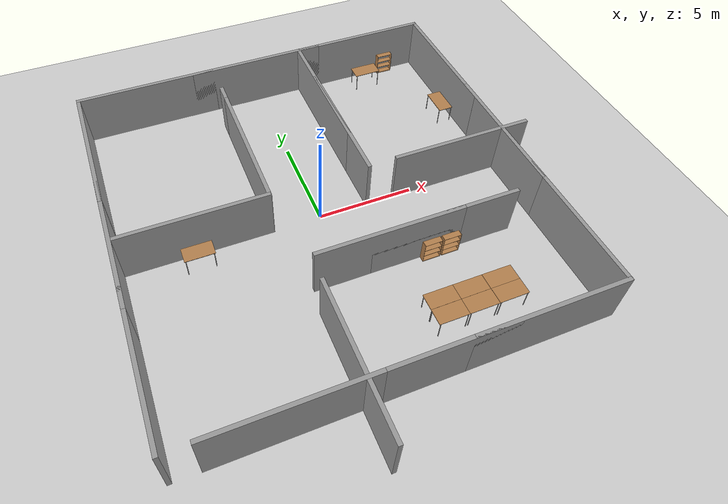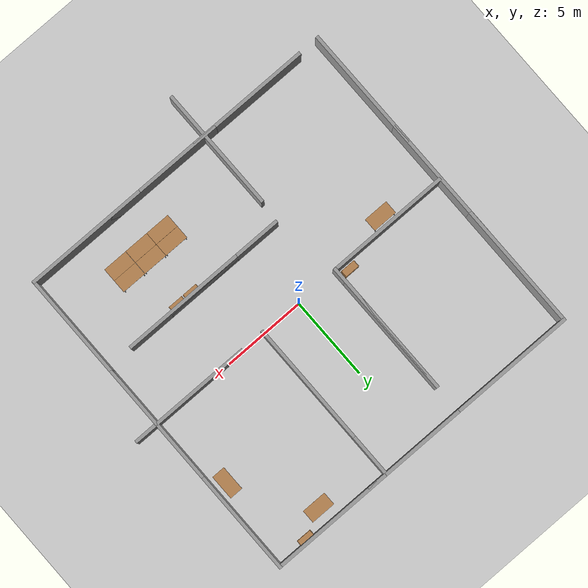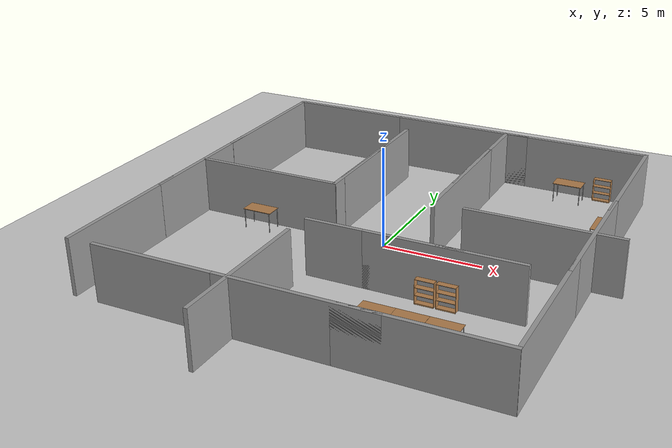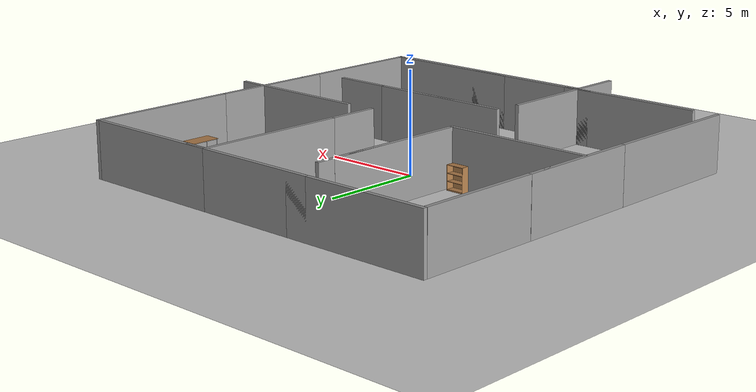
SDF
<sdf version="1.6">
 <world name="default">
  <light name="sun" type="directional">
   <pose>0 0 10 0 -0 0</pose>
   <diffuse>0.8 0.8 0.8 1</diffuse>
   <specular>0.2 0.2 0.2 1</specular>
   <attenuation>
    <range>1000</range>
    <constant>0.9</constant>
    <linear>0.01</linear>
    <quadratic>0.001</quadratic>
   </attenuation>
   <direction>-0.5 0.1 -0.9</direction>
  </light>
  <model name="ground_plane">
   <static>1</static>
   <link name="link">
    <collision name="collision">
     <geometry><plane><normal>0 0 1</normal><size>100 100</size></plane></geometry>
     <surface>
      <contact><collide_bitmask>65535</collide_bitmask></contact>
      <friction><ode><mu>100</mu><mu2>50</mu2></ode></friction>
     </surface>
    </collision>
    <visual name="visual">
     <cast_shadows>0</cast_shadows>
     <geometry><plane><normal>0 0 1</normal><size>100 100</size></plane></geometry>
     <material>
      <script><uri>file://media/materials/scripts/gazebo.material</uri><name>Gazebo/Grey</name></script>
     </material>
    </visual>
   </link>
  </model>
  <gravity>0 0 -9.8</gravity>
  <magnetic_field>6e-06 2.3e-05 -4.2e-05</magnetic_field>
  <atmosphere type="adiabatic"/>
  <physics name="default_physics" default="0" type="ode">
   <max_step_size>0.001</max_step_size>
   <real_time_factor>1</real_time_factor>
   <real_time_update_rate>1000</real_time_update_rate>
  </physics>
  <scene><ambient>0.4 0.4 0.4 1</ambient><background>0.7 0.7 0.7 1</background><shadows>1</shadows></scene>
  <audio><device>default</device></audio>
  <spherical_coordinates>
   <surface_model>EARTH_WGS84</surface_model>
   <latitude_deg>0</latitude_deg>
   <longitude_deg>0</longitude_deg>
   <elevation>0</elevation>
   <heading_deg>0</heading_deg>
  </spherical_coordinates>
  <model name="grey_wall">
   <static>1</static>
   <link name="link">
    <pose>0 0 1.4 0 -0 0</pose>
    <collision name="collision"><geometry><box><size>7.5 0.2 2.8</size></box></geometry></collision>
    <visual name="visual">
     <cast_shadows>0</cast_shadows>
     <geometry><box><size>7.5 0.2 2.8</size></box></geometry>
     <material>
      <script>
       <uri>model://grey_wall/materials/scripts</uri>
       <uri>model://grey_wall/materials/textures</uri>
       <name>vrc/grey_wall</name>
      </script>
     </material>
    </visual>
   </link>
   <pose>-5 -10 0 0 -0 0</pose>
  </model>
  <model name="grey_wall_0">
   <static>1</static>
   <link name="link">
    <pose>0 0 1.4 0 -0 0</pose>
    <collision name="collision"><geometry><box><size>7.5 0.2 2.8</size></box></geometry></collision>
    <visual name="visual">
     <cast_shadows>0</cast_shadows>
     <geometry><box><size>7.5 0.2 2.8</size></box></geometry>
     <material>
      <script>
       <uri>model://grey_wall/materials/scripts</uri>
       <uri>model://grey_wall/materials/textures</uri>
       <name>vrc/grey_wall</name>
      </script>
     </material>
    </visual>
   </link>
   <pose>1 -10 0 0 -0 0</pose>
  </model>
  <model name="grey_wall_1">
   <static>1</static>
   <link name="link">
    <pose>0 0 1.4 0 -0 0</pose>
    <collision name="collision"><geometry><box><size>7.5 0.2 2.8</size></box></geometry></collision>
    <visual name="visual">
     <cast_shadows>0</cast_shadows>
     <geometry><box><size>7.5 0.2 2.8</size></box></geometry>
     <material>
      <script>
       <uri>model://grey_wall/materials/scripts</uri>
       <uri>model://grey_wall/materials/textures</uri>
       <name>vrc/grey_wall</name>
      </script>
     </material>
    </visual>
   </link>
   <pose>6.33829 -10 0 0 -0 0</pose>
  </model>
  <model name="grey_wall_2">
   <static>1</static>
   <link name="link">
    <pose>0 0 1.4 0 -0 0</pose>
    <collision name="collision"><geometry><box><size>7.5 0.2 2.8</size></box></geometry></collision>
    <visual name="visual">
     <cast_shadows>0</cast_shadows>
     <geometry><box><size>7.5 0.2 2.8</size></box></geometry>
     <material>
      <script>
       <uri>model://grey_wall/materials/scripts</uri>
       <uri>model://grey_wall/materials/textures</uri>
       <name>vrc/grey_wall</name>
      </script>
     </material>
    </visual>
   </link>
   <pose>-6.33756 10 0 0 -0 0</pose>
  </model>
  <model name="grey_wall_2_clone">
   <static>1</static>
   <link name="link">
    <pose>0 0 1.4 0 -0 0</pose>
    <collision name="collision"><geometry><box><size>7.5 0.2 2.8</size></box></geometry></collision>
    <visual name="visual">
     <cast_shadows>0</cast_shadows>
     <geometry><box><size>7.5 0.2 2.8</size></box></geometry>
     <material>
      <script>
       <uri>model://grey_wall/materials/scripts</uri>
       <uri>model://grey_wall/materials/textures</uri>
       <name>vrc/grey_wall</name>
      </script>
     </material>
    </visual>
   </link>
   <pose>0 10 0 0 -0 0</pose>
  </model>
  <model name="grey_wall_2_clone_0">
   <static>1</static>
   <link name="link">
    <pose>0 0 1.4 0 -0 0</pose>
    <collision name="collision"><geometry><box><size>7.5 0.2 2.8</size></box></geometry></collision>
    <visual name="visual">
     <cast_shadows>0</cast_shadows>
     <geometry><box><size>7.5 0.2 2.8</size></box></geometry>
     <material>
      <script>
       <uri>model://grey_wall/materials/scripts</uri>
       <uri>model://grey_wall/materials/textures</uri>
       <name>vrc/grey_wall</name>
      </script>
     </material>
    </visual>
   </link>
   <pose>6.32588 10 0 0 -0 0</pose>
  </model>
  <model name="grey_wall_2_clone_1">
   <static>1</static>
   <link name="link">
    <pose>0 0 1.4 0 -0 0</pose>
    <collision name="collision"><geometry><box><size>7.5 0.2 2.8</size></box></geometry></collision>
    <visual name="visual">
     <cast_shadows>0</cast_shadows>
     <geometry><box><size>7.5 0.2 2.8</size></box></geometry>
     <material>
      <script>
       <uri>model://grey_wall/materials/scripts</uri>
       <uri>model://grey_wall/materials/textures</uri>
       <name>vrc/grey_wall</name>
      </script>
     </material>
    </visual>
   </link>
   <pose>10 6.35375 0 0 0 -1.5708</pose>
  </model>
  <model name="grey_wall_2_clone_1_clone">
   <static>1</static>
   <link name="link">
    <pose>0 0 1.4 0 -0 0</pose>
    <collision name="collision"><geometry><box><size>7.5 0.2 2.8</size></box></geometry></collision>
    <visual name="visual">
     <cast_shadows>0</cast_shadows>
     <geometry><box><size>7.5 0.2 2.8</size></box></geometry>
     <material>
      <script>
       <uri>model://grey_wall/materials/scripts</uri>
       <uri>model://grey_wall/materials/textures</uri>
       <name>vrc/grey_wall</name>
      </script>
     </material>
    </visual>
   </link>
   <pose>10 0 0 0 0 -1.5708</pose>
  </model>
  <model name="grey_wall_2_clone_1_clone_0">
   <static>1</static>
   <link name="link">
    <pose>0 0 1.4 0 -0 0</pose>
    <collision name="collision"><geometry><box><size>7.5 0.2 2.8</size></box></geometry></collision>
    <visual name="visual">
     <cast_shadows>0</cast_shadows>
     <geometry><box><size>7.5 0.2 2.8</size></box></geometry>
     <material>
      <script>
       <uri>model://grey_wall/materials/scripts</uri>
       <uri>model://grey_wall/materials/textures</uri>
       <name>vrc/grey_wall</name>
      </script>
     </material>
    </visual>
   </link>
   <pose>10 -6.34845 0 0 0 -1.5708</pose>
  </model>
  <model name="grey_wall_2_clone_1_clone_1">
   <static>1</static>
   <link name="link">
    <pose>0 0 1.4 0 -0 0</pose>
    <collision name="collision"><geometry><box><size>7.5 0.2 2.8</size></box></geometry></collision>
    <visual name="visual">
     <cast_shadows>0</cast_shadows>
     <geometry><box><size>7.5 0.2 2.8</size></box></geometry>
     <material>
      <script>
       <uri>model://grey_wall/materials/scripts</uri>
       <uri>model://grey_wall/materials/textures</uri>
       <name>vrc/grey_wall</name>
      </script>
     </material>
    </visual>
   </link>
   <pose>-9.9932 6.14757 0 0 0 -1.5708</pose>
  </model>
  <model name="grey_wall_2_clone_1_clone_2">
   <static>1</static>
   <link name="link">
    <pose>0 0 1.4 0 -0 0</pose>
    <collision name="collision"><geometry><box><size>7.5 0.2 2.8</size></box></geometry></collision>
    <visual name="visual">
     <cast_shadows>0</cast_shadows>
     <geometry><box><size>7.5 0.2 2.8</size></box></geometry>
     <material>
      <script>
       <uri>model://grey_wall/materials/scripts</uri>
       <uri>model://grey_wall/materials/textures</uri>
       <name>vrc/grey_wall</name>
      </script>
     </material>
    </visual>
   </link>
   <pose>-10 0 0 0 0 -1.5708</pose>
  </model>
  <model name="grey_wall_2_clone_1_clone_3">
   <static>1</static>
   <link name="link">
    <pose>0 0 1.4 0 -0 0</pose>
    <collision name="collision"><geometry><box><size>7.5 0.2 2.8</size></box></geometry></collision>
    <visual name="visual">
     <cast_shadows>0</cast_shadows>
     <geometry><box><size>7.5 0.2 2.8</size></box></geometry>
     <material>
      <script>
       <uri>model://grey_wall/materials/scripts</uri>
       <uri>model://grey_wall/materials/textures</uri>
       <name>vrc/grey_wall</name>
      </script>
     </material>
    </visual>
   </link>
   <pose>-10.0006 -6.33903 0 0 0 -1.5708</pose>
  </model>
  <model name="grey_wall_2_clone_1_clone_4">
   <static>1</static>
   <link name="link">
    <pose>0 0 1.4 0 -0 0</pose>
    <collision name="collision"><geometry><box><size>7.5 0.2 2.8</size></box></geometry></collision>
    <visual name="visual">
     <cast_shadows>0</cast_shadows>
     <geometry><box><size>7.5 0.2 2.8</size></box></geometry>
     <material>
      <script>
       <uri>model://grey_wall/materials/scripts</uri>
       <uri>model://grey_wall/materials/textures</uri>
       <name>vrc/grey_wall</name>
      </script>
     </material>
    </visual>
   </link>
   <pose>-2.56259 4.57788 0 0 0 -1.5708</pose>
  </model>
  <model name="grey_wall_2_clone_1_clone_5">
   <static>1</static>
   <link name="link">
    <pose>0 0 1.4 0 -0 0</pose>
    <collision name="collision"><geometry><box><size>7.5 0.2 2.8</size></box></geometry></collision>
    <visual name="visual">
     <cast_shadows>0</cast_shadows>
     <geometry><box><size>7.5 0.2 2.8</size></box></geometry>
     <material>
      <script>
       <uri>model://grey_wall/materials/scripts</uri>
       <uri>model://grey_wall/materials/textures</uri>
       <name>vrc/grey_wall</name>
      </script>
     </material>
    </visual>
   </link>
   <pose>-2.56352 3.6648 -0 0 0 -1.5708</pose>
  </model>
  <model name="grey_wall_2_clone_1_clone_6">
   <static>1</static>
   <link name="link">
    <pose>0 0 1.4 0 -0 0</pose>
    <collision name="collision"><geometry><box><size>7.5 0.2 2.8</size></box></geometry></collision>
    <visual name="visual">
     <cast_shadows>0</cast_shadows>
     <geometry><box><size>7.5 0.2 2.8</size></box></geometry>
     <material>
      <script>
       <uri>model://grey_wall/materials/scripts</uri>
       <uri>model://grey_wall/materials/textures</uri>
       <name>vrc/grey_wall</name>
      </script>
     </material>
    </visual>
   </link>
   <pose>2.53368 6.21756 0 0 0 -1.5708</pose>
  </model>
  <model name="grey_wall_2_clone_1_clone_7">
   <static>1</static>
   <link name="link">
    <pose>0 0 1.4 0 -0 0</pose>
    <collision name="collision"><geometry><box><size>7.5 0.2 2.8</size></box></geometry></collision>
    <visual name="visual">
     <cast_shadows>0</cast_shadows>
     <geometry><box><size>7.5 0.2 2.8</size></box></geometry>
     <material>
      <script>
       <uri>model://grey_wall/materials/scripts</uri>
       <uri>model://grey_wall/materials/textures</uri>
       <name>vrc/grey_wall</name>
      </script>
     </material>
    </visual>
   </link>
   <pose>2.53381 3.64519 0 0 0 -1.5708</pose>
  </model>
  <model name="grey_wall_2_clone_1_clone_8">
   <static>1</static>
   <link name="link">
    <pose>0 0 1.4 0 -0 0</pose>
    <collision name="collision"><geometry><box><size>7.5 0.2 2.8</size></box></geometry></collision>
    <visual name="visual">
     <cast_shadows>0</cast_shadows>
     <geometry><box><size>7.5 0.2 2.8</size></box></geometry>
     <material>
      <script>
       <uri>model://grey_wall/materials/scripts</uri>
       <uri>model://grey_wall/materials/textures</uri>
       <name>vrc/grey_wall</name>
      </script>
     </material>
    </visual>
   </link>
   <pose>-2.00001 -9.01321 0 0 0 -1.5708</pose>
  </model>
  <model name="grey_wall_3">
   <static>1</static>
   <link name="link">
    <pose>0 0 1.4 0 -0 0</pose>
    <collision name="collision"><geometry><box><size>7.5 0.2 2.8</size></box></geometry></collision>
    <visual name="visual">
     <cast_shadows>0</cast_shadows>
     <geometry><box><size>7.5 0.2 2.8</size></box></geometry>
     <material>
      <script>
       <uri>model://grey_wall/materials/scripts</uri>
       <uri>model://grey_wall/materials/textures</uri>
       <name>vrc/grey_wall</name>
      </script>
     </material>
    </visual>
   </link>
   <pose>-6.23821 0 0 0 -0 0</pose>
  </model>
  <model name="grey_wall_3_clone">
   <static>1</static>
   <link name="link">
    <pose>0 0 1.4 0 -0 0</pose>
    <collision name="collision"><geometry><box><size>7.5 0.2 2.8</size></box></geometry></collision>
    <visual name="visual">
     <cast_shadows>0</cast_shadows>
     <geometry><box><size>7.5 0.2 2.8</size></box></geometry>
     <material>
      <script>
       <uri>model://grey_wall/materials/scripts</uri>
       <uri>model://grey_wall/materials/textures</uri>
       <name>vrc/grey_wall</name>
      </script>
     </material>
    </visual>
   </link>
   <pose>7.72049 0 0 0 -0 0</pose>
  </model>
  <model name="grey_wall_3_clone_0">
   <static>1</static>
   <link name="link">
    <pose>0 0 1.4 0 -0 0</pose>
    <collision name="collision"><geometry><box><size>7.5 0.2 2.8</size></box></geometry></collision>
    <visual name="visual">
     <cast_shadows>0</cast_shadows>
     <geometry><box><size>7.5 0.2 2.8</size></box></geometry>
     <material>
      <script>
       <uri>model://grey_wall/materials/scripts</uri>
       <uri>model://grey_wall/materials/textures</uri>
       <name>vrc/grey_wall</name>
      </script>
     </material>
    </visual>
   </link>
   <pose>1.84504 -4 0 0 -0 0</pose>
  </model>
  <model name="grey_wall_3_clone_1">
   <static>1</static>
   <link name="link">
    <pose>0 0 1.4 0 -0 0</pose>
    <collision name="collision"><geometry><box><size>7.5 0.2 2.8</size></box></geometry></collision>
    <visual name="visual">
     <cast_shadows>0</cast_shadows>
     <geometry><box><size>7.5 0.2 2.8</size></box></geometry>
     <material>
      <script>
       <uri>model://grey_wall/materials/scripts</uri>
       <uri>model://grey_wall/materials/textures</uri>
       <name>vrc/grey_wall</name>
      </script>
     </material>
    </visual>
   </link>
   <pose>4.68321 -4 0 0 -0 0</pose>
  </model>
  <model name="table">
   <static>1</static>
   <link name="link">
    <collision name="surface">
     <pose>0 0 1 0 -0 0</pose>
     <geometry><box><size>1.5 0.8 0.03</size></box></geometry>
     <surface><friction><ode><mu>0.6</mu><mu2>0.6</mu2></ode></friction></surface>
    </collision>
    <visual name="visual1">
     <pose>0 0 1 0 -0 0</pose>
     <geometry><box><size>1.5 0.8 0.03</size></box></geometry>
     <material>
      <script><uri>file://media/materials/scripts/gazebo.material</uri><name>Gazebo/Wood</name></script>
     </material>
    </visual>
    <collision name="front_left_leg">
     <pose>0.68 0.38 0.5 0 -0 0</pose>
     <geometry><cylinder><radius>0.02</radius><length>1</length></cylinder></geometry>
    </collision>
    <visual name="front_left_leg">
     <pose>0.68 0.38 0.5 0 -0 0</pose>
     <geometry><cylinder><radius>0.02</radius><length>1</length></cylinder></geometry>
     <material>
      <script><uri>file://media/materials/scripts/gazebo.material</uri><name>Gazebo/Grey</name></script>
     </material>
    </visual>
    <collision name="front_right_leg">
     <pose>0.68 -0.38 0.5 0 -0 0</pose>
     <geometry><cylinder><radius>0.02</radius><length>1</length></cylinder></geometry>
    </collision>
    <visual name="front_right_leg">
     <pose>0.68 -0.38 0.5 0 -0 0</pose>
     <geometry><cylinder><radius>0.02</radius><length>1</length></cylinder></geometry>
     <material>
      <script><uri>file://media/materials/scripts/gazebo.material</uri><name>Gazebo/Grey</name></script>
     </material>
    </visual>
    <collision name="back_right_leg">
     <pose>-0.68 -0.38 0.5 0 -0 0</pose>
     <geometry><cylinder><radius>0.02</radius><length>1</length></cylinder></geometry>
    </collision>
    <visual name="back_right_leg">
     <pose>-0.68 -0.38 0.5 0 -0 0</pose>
     <geometry><cylinder><radius>0.02</radius><length>1</length></cylinder></geometry>
     <material>
      <script><uri>file://media/materials/scripts/gazebo.material</uri><name>Gazebo/Grey</name></script>
     </material>
    </visual>
    <collision name="back_left_leg">
     <pose>-0.68 0.38 0.5 0 -0 0</pose>
     <geometry><cylinder><radius>0.02</radius><length>1</length></cylinder></geometry>
    </collision>
    <visual name="back_left_leg">
     <pose>-0.68 0.38 0.5 0 -0 0</pose>
     <geometry><cylinder><radius>0.02</radius><length>1</length></cylinder></geometry>
     <material>
      <script><uri>file://media/materials/scripts/gazebo.material</uri><name>Gazebo/Grey</name></script>
     </material>
    </visual>
   </link>
   <pose>3 -7.01303 0 0 -0 0</pose>
  </model>
  <model name="table_0">
   <static>1</static>
   <link name="link">
    <collision name="surface">
     <pose>0 0 1 0 -0 0</pose>
     <geometry><box><size>1.5 0.8 0.03</size></box></geometry>
     <surface><friction><ode><mu>0.6</mu><mu2>0.6</mu2></ode></friction></surface>
    </collision>
    <visual name="visual1">
     <pose>0 0 1 0 -0 0</pose>
     <geometry><box><size>1.5 0.8 0.03</size></box></geometry>
     <material>
      <script><uri>file://media/materials/scripts/gazebo.material</uri><name>Gazebo/Wood</name></script>
     </material>
    </visual>
    <collision name="front_left_leg">
     <pose>0.68 0.38 0.5 0 -0 0</pose>
     <geometry><cylinder><radius>0.02</radius><length>1</length></cylinder></geometry>
    </collision>
    <visual name="front_left_leg">
     <pose>0.68 0.38 0.5 0 -0 0</pose>
     <geometry><cylinder><radius>0.02</radius><length>1</length></cylinder></geometry>
     <material>
      <script><uri>file://media/materials/scripts/gazebo.material</uri><name>Gazebo/Grey</name></script>
     </material>
    </visual>
    <collision name="front_right_leg">
     <pose>0.68 -0.38 0.5 0 -0 0</pose>
     <geometry><cylinder><radius>0.02</radius><length>1</length></cylinder></geometry>
    </collision>
    <visual name="front_right_leg">
     <pose>0.68 -0.38 0.5 0 -0 0</pose>
     <geometry><cylinder><radius>0.02</radius><length>1</length></cylinder></geometry>
     <material>
      <script><uri>file://media/materials/scripts/gazebo.material</uri><name>Gazebo/Grey</name></script>
     </material>
    </visual>
    <collision name="back_right_leg">
     <pose>-0.68 -0.38 0.5 0 -0 0</pose>
     <geometry><cylinder><radius>0.02</radius><length>1</length></cylinder></geometry>
    </collision>
    <visual name="back_right_leg">
     <pose>-0.68 -0.38 0.5 0 -0 0</pose>
     <geometry><cylinder><radius>0.02</radius><length>1</length></cylinder></geometry>
     <material>
      <script><uri>file://media/materials/scripts/gazebo.material</uri><name>Gazebo/Grey</name></script>
     </material>
    </visual>
    <collision name="back_left_leg">
     <pose>-0.68 0.38 0.5 0 -0 0</pose>
     <geometry><cylinder><radius>0.02</radius><length>1</length></cylinder></geometry>
    </collision>
    <visual name="back_left_leg">
     <pose>-0.68 0.38 0.5 0 -0 0</pose>
     <geometry><cylinder><radius>0.02</radius><length>1</length></cylinder></geometry>
     <material>
      <script><uri>file://media/materials/scripts/gazebo.material</uri><name>Gazebo/Grey</name></script>
     </material>
    </visual>
   </link>
   <pose>4.49216 -7.01269 0 0 -0 0</pose>
  </model>
  <model name="table_1">
   <static>1</static>
   <link name="link">
    <collision name="surface">
     <pose>0 0 1 0 -0 0</pose>
     <geometry><box><size>1.5 0.8 0.03</size></box></geometry>
     <surface><friction><ode><mu>0.6</mu><mu2>0.6</mu2></ode></friction></surface>
    </collision>
    <visual name="visual1">
     <pose>0 0 1 0 -0 0</pose>
     <geometry><box><size>1.5 0.8 0.03</size></box></geometry>
     <material>
      <script><uri>file://media/materials/scripts/gazebo.material</uri><name>Gazebo/Wood</name></script>
     </material>
    </visual>
    <collision name="front_left_leg">
     <pose>0.68 0.38 0.5 0 -0 0</pose>
     <geometry><cylinder><radius>0.02</radius><length>1</length></cylinder></geometry>
    </collision>
    <visual name="front_left_leg">
     <pose>0.68 0.38 0.5 0 -0 0</pose>
     <geometry><cylinder><radius>0.02</radius><length>1</length></cylinder></geometry>
     <material>
      <script><uri>file://media/materials/scripts/gazebo.material</uri><name>Gazebo/Grey</name></script>
     </material>
    </visual>
    <collision name="front_right_leg">
     <pose>0.68 -0.38 0.5 0 -0 0</pose>
     <geometry><cylinder><radius>0.02</radius><length>1</length></cylinder></geometry>
    </collision>
    <visual name="front_right_leg">
     <pose>0.68 -0.38 0.5 0 -0 0</pose>
     <geometry><cylinder><radius>0.02</radius><length>1</length></cylinder></geometry>
     <material>
      <script><uri>file://media/materials/scripts/gazebo.material</uri><name>Gazebo/Grey</name></script>
     </material>
    </visual>
    <collision name="back_right_leg">
     <pose>-0.68 -0.38 0.5 0 -0 0</pose>
     <geometry><cylinder><radius>0.02</radius><length>1</length></cylinder></geometry>
    </collision>
    <visual name="back_right_leg">
     <pose>-0.68 -0.38 0.5 0 -0 0</pose>
     <geometry><cylinder><radius>0.02</radius><length>1</length></cylinder></geometry>
     <material>
      <script><uri>file://media/materials/scripts/gazebo.material</uri><name>Gazebo/Grey</name></script>
     </material>
    </visual>
    <collision name="back_left_leg">
     <pose>-0.68 0.38 0.5 0 -0 0</pose>
     <geometry><cylinder><radius>0.02</radius><length>1</length></cylinder></geometry>
    </collision>
    <visual name="back_left_leg">
     <pose>-0.68 0.38 0.5 0 -0 0</pose>
     <geometry><cylinder><radius>0.02</radius><length>1</length></cylinder></geometry>
     <material>
      <script><uri>file://media/materials/scripts/gazebo.material</uri><name>Gazebo/Grey</name></script>
     </material>
    </visual>
   </link>
   <pose>6 -7.01146 0 0 -0 0</pose>
  </model>
  <model name="table_2">
   <static>1</static>
   <link name="link">
    <collision name="surface">
     <pose>0 0 1 0 -0 0</pose>
     <geometry><box><size>1.5 0.8 0.03</size></box></geometry>
     <surface><friction><ode><mu>0.6</mu><mu2>0.6</mu2></ode></friction></surface>
    </collision>
    <visual name="visual1">
     <pose>0 0 1 0 -0 0</pose>
     <geometry><box><size>1.5 0.8 0.03</size></box></geometry>
     <material>
      <script><uri>file://media/materials/scripts/gazebo.material</uri><name>Gazebo/Wood</name></script>
     </material>
    </visual>
    <collision name="front_left_leg">
     <pose>0.68 0.38 0.5 0 -0 0</pose>
     <geometry><cylinder><radius>0.02</radius><length>1</length></cylinder></geometry>
    </collision>
    <visual name="front_left_leg">
     <pose>0.68 0.38 0.5 0 -0 0</pose>
     <geometry><cylinder><radius>0.02</radius><length>1</length></cylinder></geometry>
     <material>
      <script><uri>file://media/materials/scripts/gazebo.material</uri><name>Gazebo/Grey</name></script>
     </material>
    </visual>
    <collision name="front_right_leg">
     <pose>0.68 -0.38 0.5 0 -0 0</pose>
     <geometry><cylinder><radius>0.02</radius><length>1</length></cylinder></geometry>
    </collision>
    <visual name="front_right_leg">
     <pose>0.68 -0.38 0.5 0 -0 0</pose>
     <geometry><cylinder><radius>0.02</radius><length>1</length></cylinder></geometry>
     <material>
      <script><uri>file://media/materials/scripts/gazebo.material</uri><name>Gazebo/Grey</name></script>
     </material>
    </visual>
    <collision name="back_right_leg">
     <pose>-0.68 -0.38 0.5 0 -0 0</pose>
     <geometry><cylinder><radius>0.02</radius><length>1</length></cylinder></geometry>
    </collision>
    <visual name="back_right_leg">
     <pose>-0.68 -0.38 0.5 0 -0 0</pose>
     <geometry><cylinder><radius>0.02</radius><length>1</length></cylinder></geometry>
     <material>
      <script><uri>file://media/materials/scripts/gazebo.material</uri><name>Gazebo/Grey</name></script>
     </material>
    </visual>
    <collision name="back_left_leg">
     <pose>-0.68 0.38 0.5 0 -0 0</pose>
     <geometry><cylinder><radius>0.02</radius><length>1</length></cylinder></geometry>
    </collision>
    <visual name="back_left_leg">
     <pose>-0.68 0.38 0.5 0 -0 0</pose>
     <geometry><cylinder><radius>0.02</radius><length>1</length></cylinder></geometry>
     <material>
      <script><uri>file://media/materials/scripts/gazebo.material</uri><name>Gazebo/Grey</name></script>
     </material>
    </visual>
   </link>
   <pose>3 -7.81572 0 0 -0 0</pose>
  </model>
  <model name="table_3">
   <static>1</static>
   <link name="link">
    <collision name="surface">
     <pose>0 0 1 0 -0 0</pose>
     <geometry><box><size>1.5 0.8 0.03</size></box></geometry>
     <surface><friction><ode><mu>0.6</mu><mu2>0.6</mu2></ode></friction></surface>
    </collision>
    <visual name="visual1">
     <pose>0 0 1 0 -0 0</pose>
     <geometry><box><size>1.5 0.8 0.03</size></box></geometry>
     <material>
      <script><uri>file://media/materials/scripts/gazebo.material</uri><name>Gazebo/Wood</name></script>
     </material>
    </visual>
    <collision name="front_left_leg">
     <pose>0.68 0.38 0.5 0 -0 0</pose>
     <geometry><cylinder><radius>0.02</radius><length>1</length></cylinder></geometry>
    </collision>
    <visual name="front_left_leg">
     <pose>0.68 0.38 0.5 0 -0 0</pose>
     <geometry><cylinder><radius>0.02</radius><length>1</length></cylinder></geometry>
     <material>
      <script><uri>file://media/materials/scripts/gazebo.material</uri><name>Gazebo/Grey</name></script>
     </material>
    </visual>
    <collision name="front_right_leg">
     <pose>0.68 -0.38 0.5 0 -0 0</pose>
     <geometry><cylinder><radius>0.02</radius><length>1</length></cylinder></geometry>
    </collision>
    <visual name="front_right_leg">
     <pose>0.68 -0.38 0.5 0 -0 0</pose>
     <geometry><cylinder><radius>0.02</radius><length>1</length></cylinder></geometry>
     <material>
      <script><uri>file://media/materials/scripts/gazebo.material</uri><name>Gazebo/Grey</name></script>
     </material>
    </visual>
    <collision name="back_right_leg">
     <pose>-0.68 -0.38 0.5 0 -0 0</pose>
     <geometry><cylinder><radius>0.02</radius><length>1</length></cylinder></geometry>
    </collision>
    <visual name="back_right_leg">
     <pose>-0.68 -0.38 0.5 0 -0 0</pose>
     <geometry><cylinder><radius>0.02</radius><length>1</length></cylinder></geometry>
     <material>
      <script><uri>file://media/materials/scripts/gazebo.material</uri><name>Gazebo/Grey</name></script>
     </material>
    </visual>
    <collision name="back_left_leg">
     <pose>-0.68 0.38 0.5 0 -0 0</pose>
     <geometry><cylinder><radius>0.02</radius><length>1</length></cylinder></geometry>
    </collision>
    <visual name="back_left_leg">
     <pose>-0.68 0.38 0.5 0 -0 0</pose>
     <geometry><cylinder><radius>0.02</radius><length>1</length></cylinder></geometry>
     <material>
      <script><uri>file://media/materials/scripts/gazebo.material</uri><name>Gazebo/Grey</name></script>
     </material>
    </visual>
   </link>
   <pose>4.4931 -7.81409 0 0 -0 0</pose>
  </model>
  <model name="table_4">
   <static>1</static>
   <link name="link">
    <collision name="surface">
     <pose>0 0 1 0 -0 0</pose>
     <geometry><box><size>1.5 0.8 0.03</size></box></geometry>
     <surface><friction><ode><mu>0.6</mu><mu2>0.6</mu2></ode></friction></surface>
    </collision>
    <visual name="visual1">
     <pose>0 0 1 0 -0 0</pose>
     <geometry><box><size>1.5 0.8 0.03</size></box></geometry>
     <material>
      <script><uri>file://media/materials/scripts/gazebo.material</uri><name>Gazebo/Wood</name></script>
     </material>
    </visual>
    <collision name="front_left_leg">
     <pose>0.68 0.38 0.5 0 -0 0</pose>
     <geometry><cylinder><radius>0.02</radius><length>1</length></cylinder></geometry>
    </collision>
    <visual name="front_left_leg">
     <pose>0.68 0.38 0.5 0 -0 0</pose>
     <geometry><cylinder><radius>0.02</radius><length>1</length></cylinder></geometry>
     <material>
      <script><uri>file://media/materials/scripts/gazebo.material</uri><name>Gazebo/Grey</name></script>
     </material>
    </visual>
    <collision name="front_right_leg">
     <pose>0.68 -0.38 0.5 0 -0 0</pose>
     <geometry><cylinder><radius>0.02</radius><length>1</length></cylinder></geometry>
    </collision>
    <visual name="front_right_leg">
     <pose>0.68 -0.38 0.5 0 -0 0</pose>
     <geometry><cylinder><radius>0.02</radius><length>1</length></cylinder></geometry>
     <material>
      <script><uri>file://media/materials/scripts/gazebo.material</uri><name>Gazebo/Grey</name></script>
     </material>
    </visual>
    <collision name="back_right_leg">
     <pose>-0.68 -0.38 0.5 0 -0 0</pose>
     <geometry><cylinder><radius>0.02</radius><length>1</length></cylinder></geometry>
    </collision>
    <visual name="back_right_leg">
     <pose>-0.68 -0.38 0.5 0 -0 0</pose>
     <geometry><cylinder><radius>0.02</radius><length>1</length></cylinder></geometry>
     <material>
      <script><uri>file://media/materials/scripts/gazebo.material</uri><name>Gazebo/Grey</name></script>
     </material>
    </visual>
    <collision name="back_left_leg">
     <pose>-0.68 0.38 0.5 0 -0 0</pose>
     <geometry><cylinder><radius>0.02</radius><length>1</length></cylinder></geometry>
    </collision>
    <visual name="back_left_leg">
     <pose>-0.68 0.38 0.5 0 -0 0</pose>
     <geometry><cylinder><radius>0.02</radius><length>1</length></cylinder></geometry>
     <material>
      <script><uri>file://media/materials/scripts/gazebo.material</uri><name>Gazebo/Grey</name></script>
     </material>
    </visual>
   </link>
   <pose>6.00004 -7.81039 0 0 -0 0</pose>
  </model>
  <model name="bookshelf">
   <static>1</static>
   <link name="link">
    <inertial><mass>1</mass></inertial>
    <collision name="back">
     <pose>0 0.005 0.6 0 -0 0</pose>
     <geometry><box><size>0.9 0.01 1.2</size></box></geometry>
    </collision>
    <visual name="visual1">
     <pose>0 0.005 0.6 0 -0 0</pose>
     <geometry><box><size>0.9 0.01 1.2</size></box></geometry>
     <material>
      <script><uri>file://media/materials/scripts/gazebo.material</uri><name>Gazebo/Wood</name></script>
     </material>
    </visual>
    <collision name="left_side">
     <pose>0.45 -0.195 0.6 0 -0 0</pose>
     <geometry><box><size>0.02 0.4 1.2</size></box></geometry>
    </collision>
    <visual name="visual2">
     <pose>0.45 -0.195 0.6 0 -0 0</pose>
     <geometry><box><size>0.02 0.4 1.2</size></box></geometry>
     <material>
      <script><uri>file://media/materials/scripts/gazebo.material</uri><name>Gazebo/Wood</name></script>
     </material>
    </visual>
    <collision name="right_side">
     <pose>-0.45 -0.195 0.6 0 -0 0</pose>
     <geometry><box><size>0.02 0.4 1.2</size></box></geometry>
    </collision>
    <visual name="visual3">
     <pose>-0.45 -0.195 0.6 0 -0 0</pose>
     <geometry><box><size>0.02 0.4 1.2</size></box></geometry>
     <material>
      <script><uri>file://media/materials/scripts/gazebo.material</uri><name>Gazebo/Wood</name></script>
     </material>
    </visual>
    <collision name="bottom">
     <pose>0 -0.195 0.03 0 -0 0</pose>
     <geometry><box><size>0.88 0.4 0.06</size></box></geometry>
    </collision>
    <visual name="visual4">
     <pose>0 -0.195 0.03 0 -0 0</pose>
     <geometry><box><size>0.88 0.4 0.06</size></box></geometry>
     <material>
      <script><uri>file://media/materials/scripts/gazebo.material</uri><name>Gazebo/Wood</name></script>
     </material>
    </visual>
    <collision name="top">
     <pose>0 -0.195 1.19 0 -0 0</pose>
     <geometry><box><size>0.88 0.4 0.02</size></box></geometry>
    </collision>
    <visual name="visual5">
     <pose>0 -0.195 1.19 0 -0 0</pose>
     <geometry><box><size>0.88 0.4 0.02</size></box></geometry>
     <material>
      <script><uri>file://media/materials/scripts/gazebo.material</uri><name>Gazebo/Wood</name></script>
     </material>
    </visual>
    <collision name="low_shelf">
     <pose>0 -0.195 0.43 0 -0 0</pose>
     <geometry><box><size>0.88 0.4 0.02</size></box></geometry>
    </collision>
    <visual name="visual6">
     <pose>0 -0.195 0.43 0 -0 0</pose>
     <geometry><box><size>0.88 0.4 0.02</size></box></geometry>
     <material>
      <script><uri>file://media/materials/scripts/gazebo.material</uri><name>Gazebo/Wood</name></script>
     </material>
    </visual>
    <collision name="high_shelf">
     <pose>0 -0.195 0.8 0 -0 0</pose>
     <geometry><box><size>0.88 0.4 0.02</size></box></geometry>
    </collision>
    <visual name="visual7">
     <pose>0 -0.195 0.8 0 -0 0</pose>
     <geometry><box><size>0.88 0.4 0.02</size></box></geometry>
     <material>
      <script><uri>file://media/materials/scripts/gazebo.material</uri><name>Gazebo/Wood</name></script>
     </material>
    </visual>
   </link>
   <pose>5 -4 0 0 -0 0</pose>
  </model>
  <model name="bookshelf_0">
   <static>1</static>
   <link name="link">
    <inertial><mass>1</mass></inertial>
    <collision name="back">
     <pose>0 0.005 0.6 0 -0 0</pose>
     <geometry><box><size>0.9 0.01 1.2</size></box></geometry>
    </collision>
    <visual name="visual1">
     <pose>0 0.005 0.6 0 -0 0</pose>
     <geometry><box><size>0.9 0.01 1.2</size></box></geometry>
     <material>
      <script><uri>file://media/materials/scripts/gazebo.material</uri><name>Gazebo/Wood</name></script>
     </material>
    </visual>
    <collision name="left_side">
     <pose>0.45 -0.195 0.6 0 -0 0</pose>
     <geometry><box><size>0.02 0.4 1.2</size></box></geometry>
    </collision>
    <visual name="visual2">
     <pose>0.45 -0.195 0.6 0 -0 0</pose>
     <geometry><box><size>0.02 0.4 1.2</size></box></geometry>
     <material>
      <script><uri>file://media/materials/scripts/gazebo.material</uri><name>Gazebo/Wood</name></script>
     </material>
    </visual>
    <collision name="right_side">
     <pose>-0.45 -0.195 0.6 0 -0 0</pose>
     <geometry><box><size>0.02 0.4 1.2</size></box></geometry>
    </collision>
    <visual name="visual3">
     <pose>-0.45 -0.195 0.6 0 -0 0</pose>
     <geometry><box><size>0.02 0.4 1.2</size></box></geometry>
     <material>
      <script><uri>file://media/materials/scripts/gazebo.material</uri><name>Gazebo/Wood</name></script>
     </material>
    </visual>
    <collision name="bottom">
     <pose>0 -0.195 0.03 0 -0 0</pose>
     <geometry><box><size>0.88 0.4 0.06</size></box></geometry>
    </collision>
    <visual name="visual4">
     <pose>0 -0.195 0.03 0 -0 0</pose>
     <geometry><box><size>0.88 0.4 0.06</size></box></geometry>
     <material>
      <script><uri>file://media/materials/scripts/gazebo.material</uri><name>Gazebo/Wood</name></script>
     </material>
    </visual>
    <collision name="top">
     <pose>0 -0.195 1.19 0 -0 0</pose>
     <geometry><box><size>0.88 0.4 0.02</size></box></geometry>
    </collision>
    <visual name="visual5">
     <pose>0 -0.195 1.19 0 -0 0</pose>
     <geometry><box><size>0.88 0.4 0.02</size></box></geometry>
     <material>
      <script><uri>file://media/materials/scripts/gazebo.material</uri><name>Gazebo/Wood</name></script>
     </material>
    </visual>
    <collision name="low_shelf">
     <pose>0 -0.195 0.43 0 -0 0</pose>
     <geometry><box><size>0.88 0.4 0.02</size></box></geometry>
    </collision>
    <visual name="visual6">
     <pose>0 -0.195 0.43 0 -0 0</pose>
     <geometry><box><size>0.88 0.4 0.02</size></box></geometry>
     <material>
      <script><uri>file://media/materials/scripts/gazebo.material</uri><name>Gazebo/Wood</name></script>
     </material>
    </visual>
    <collision name="high_shelf">
     <pose>0 -0.195 0.8 0 -0 0</pose>
     <geometry><box><size>0.88 0.4 0.02</size></box></geometry>
    </collision>
    <visual name="visual7">
     <pose>0 -0.195 0.8 0 -0 0</pose>
     <geometry><box><size>0.88 0.4 0.02</size></box></geometry>
     <material>
      <script><uri>file://media/materials/scripts/gazebo.material</uri><name>Gazebo/Wood</name></script>
     </material>
    </visual>
   </link>
   <pose>4 -4 0 0 -0 0</pose>
  </model>
  <model name="bookshelf_1">
   <static>1</static>
   <link name="link">
    <inertial><mass>1</mass></inertial>
    <collision name="back">
     <pose>0 0.005 0.6 0 -0 0</pose>
     <geometry><box><size>0.9 0.01 1.2</size></box></geometry>
    </collision>
    <visual name="visual1">
     <pose>0 0.005 0.6 0 -0 0</pose>
     <geometry><box><size>0.9 0.01 1.2</size></box></geometry>
     <material>
      <script><uri>file://media/materials/scripts/gazebo.material</uri><name>Gazebo/Wood</name></script>
     </material>
    </visual>
    <collision name="left_side">
     <pose>0.45 -0.195 0.6 0 -0 0</pose>
     <geometry><box><size>0.02 0.4 1.2</size></box></geometry>
    </collision>
    <visual name="visual2">
     <pose>0.45 -0.195 0.6 0 -0 0</pose>
     <geometry><box><size>0.02 0.4 1.2</size></box></geometry>
     <material>
      <script><uri>file://media/materials/scripts/gazebo.material</uri><name>Gazebo/Wood</name></script>
     </material>
    </visual>
    <collision name="right_side">
     <pose>-0.45 -0.195 0.6 0 -0 0</pose>
     <geometry><box><size>0.02 0.4 1.2</size></box></geometry>
    </collision>
    <visual name="visual3">
     <pose>-0.45 -0.195 0.6 0 -0 0</pose>
     <geometry><box><size>0.02 0.4 1.2</size></box></geometry>
     <material>
      <script><uri>file://media/materials/scripts/gazebo.material</uri><name>Gazebo/Wood</name></script>
     </material>
    </visual>
    <collision name="bottom">
     <pose>0 -0.195 0.03 0 -0 0</pose>
     <geometry><box><size>0.88 0.4 0.06</size></box></geometry>
    </collision>
    <visual name="visual4">
     <pose>0 -0.195 0.03 0 -0 0</pose>
     <geometry><box><size>0.88 0.4 0.06</size></box></geometry>
     <material>
      <script><uri>file://media/materials/scripts/gazebo.material</uri><name>Gazebo/Wood</name></script>
     </material>
    </visual>
    <collision name="top">
     <pose>0 -0.195 1.19 0 -0 0</pose>
     <geometry><box><size>0.88 0.4 0.02</size></box></geometry>
    </collision>
    <visual name="visual5">
     <pose>0 -0.195 1.19 0 -0 0</pose>
     <geometry><box><size>0.88 0.4 0.02</size></box></geometry>
     <material>
      <script><uri>file://media/materials/scripts/gazebo.material</uri><name>Gazebo/Wood</name></script>
     </material>
    </visual>
    <collision name="low_shelf">
     <pose>0 -0.195 0.43 0 -0 0</pose>
     <geometry><box><size>0.88 0.4 0.02</size></box></geometry>
    </collision>
    <visual name="visual6">
     <pose>0 -0.195 0.43 0 -0 0</pose>
     <geometry><box><size>0.88 0.4 0.02</size></box></geometry>
     <material>
      <script><uri>file://media/materials/scripts/gazebo.material</uri><name>Gazebo/Wood</name></script>
     </material>
    </visual>
    <collision name="high_shelf">
     <pose>0 -0.195 0.8 0 -0 0</pose>
     <geometry><box><size>0.88 0.4 0.02</size></box></geometry>
    </collision>
    <visual name="visual7">
     <pose>0 -0.195 0.8 0 -0 0</pose>
     <geometry><box><size>0.88 0.4 0.02</size></box></geometry>
     <material>
      <script><uri>file://media/materials/scripts/gazebo.material</uri><name>Gazebo/Wood</name></script>
     </material>
    </visual>
   </link>
   <pose>8 10 0 0 -0 0</pose>
  </model>
  <model name="table_5">
   <static>1</static>
   <link name="link">
    <collision name="surface">
     <pose>0 0 1 0 -0 0</pose>
     <geometry><box><size>1.5 0.8 0.03</size></box></geometry>
     <surface><friction><ode><mu>0.6</mu><mu2>0.6</mu2></ode></friction></surface>
    </collision>
    <visual name="visual1">
     <pose>0 0 1 0 -0 0</pose>
     <geometry><box><size>1.5 0.8 0.03</size></box></geometry>
     <material>
      <script><uri>file://media/materials/scripts/gazebo.material</uri><name>Gazebo/Wood</name></script>
     </material>
    </visual>
    <collision name="front_left_leg">
     <pose>0.68 0.38 0.5 0 -0 0</pose>
     <geometry><cylinder><radius>0.02</radius><length>1</length></cylinder></geometry>
    </collision>
    <visual name="front_left_leg">
     <pose>0.68 0.38 0.5 0 -0 0</pose>
     <geometry><cylinder><radius>0.02</radius><length>1</length></cylinder></geometry>
     <material>
      <script><uri>file://media/materials/scripts/gazebo.material</uri><name>Gazebo/Grey</name></script>
     </material>
    </visual>
    <collision name="front_right_leg">
     <pose>0.68 -0.38 0.5 0 -0 0</pose>
     <geometry><cylinder><radius>0.02</radius><length>1</length></cylinder></geometry>
    </collision>
    <visual name="front_right_leg">
     <pose>0.68 -0.38 0.5 0 -0 0</pose>
     <geometry><cylinder><radius>0.02</radius><length>1</length></cylinder></geometry>
     <material>
      <script><uri>file://media/materials/scripts/gazebo.material</uri><name>Gazebo/Grey</name></script>
     </material>
    </visual>
    <collision name="back_right_leg">
     <pose>-0.68 -0.38 0.5 0 -0 0</pose>
     <geometry><cylinder><radius>0.02</radius><length>1</length></cylinder></geometry>
    </collision>
    <visual name="back_right_leg">
     <pose>-0.68 -0.38 0.5 0 -0 0</pose>
     <geometry><cylinder><radius>0.02</radius><length>1</length></cylinder></geometry>
     <material>
      <script><uri>file://media/materials/scripts/gazebo.material</uri><name>Gazebo/Grey</name></script>
     </material>
    </visual>
    <collision name="back_left_leg">
     <pose>-0.68 0.38 0.5 0 -0 0</pose>
     <geometry><cylinder><radius>0.02</radius><length>1</length></cylinder></geometry>
    </collision>
    <visual name="back_left_leg">
     <pose>-0.68 0.38 0.5 0 -0 0</pose>
     <geometry><cylinder><radius>0.02</radius><length>1</length></cylinder></geometry>
     <material>
      <script><uri>file://media/materials/scripts/gazebo.material</uri><name>Gazebo/Grey</name></script>
     </material>
    </visual>
   </link>
   <pose>6.41371 9 0 0 -0 0</pose>
  </model>
  <model name="table_6">
   <static>1</static>
   <link name="link">
    <collision name="surface">
     <pose>0 0 1 0 -0 0</pose>
     <geometry><box><size>1.5 0.8 0.03</size></box></geometry>
     <surface><friction><ode><mu>0.6</mu><mu2>0.6</mu2></ode></friction></surface>
    </collision>
    <visual name="visual1">
     <pose>0 0 1 0 -0 0</pose>
     <geometry><box><size>1.5 0.8 0.03</size></box></geometry>
     <material>
      <script><uri>file://media/materials/scripts/gazebo.material</uri><name>Gazebo/Wood</name></script>
     </material>
    </visual>
    <collision name="front_left_leg">
     <pose>0.68 0.38 0.5 0 -0 0</pose>
     <geometry><cylinder><radius>0.02</radius><length>1</length></cylinder></geometry>
    </collision>
    <visual name="front_left_leg">
     <pose>0.68 0.38 0.5 0 -0 0</pose>
     <geometry><cylinder><radius>0.02</radius><length>1</length></cylinder></geometry>
     <material>
      <script><uri>file://media/materials/scripts/gazebo.material</uri><name>Gazebo/Grey</name></script>
     </material>
    </visual>
    <collision name="front_right_leg">
     <pose>0.68 -0.38 0.5 0 -0 0</pose>
     <geometry><cylinder><radius>0.02</radius><length>1</length></cylinder></geometry>
    </collision>
    <visual name="front_right_leg">
     <pose>0.68 -0.38 0.5 0 -0 0</pose>
     <geometry><cylinder><radius>0.02</radius><length>1</length></cylinder></geometry>
     <material>
      <script><uri>file://media/materials/scripts/gazebo.material</uri><name>Gazebo/Grey</name></script>
     </material>
    </visual>
    <collision name="back_right_leg">
     <pose>-0.68 -0.38 0.5 0 -0 0</pose>
     <geometry><cylinder><radius>0.02</radius><length>1</length></cylinder></geometry>
    </collision>
    <visual name="back_right_leg">
     <pose>-0.68 -0.38 0.5 0 -0 0</pose>
     <geometry><cylinder><radius>0.02</radius><length>1</length></cylinder></geometry>
     <material>
      <script><uri>file://media/materials/scripts/gazebo.material</uri><name>Gazebo/Grey</name></script>
     </material>
    </visual>
    <collision name="back_left_leg">
     <pose>-0.68 0.38 0.5 0 -0 0</pose>
     <geometry><cylinder><radius>0.02</radius><length>1</length></cylinder></geometry>
    </collision>
    <visual name="back_left_leg">
     <pose>-0.68 0.38 0.5 0 -0 0</pose>
     <geometry><cylinder><radius>0.02</radius><length>1</length></cylinder></geometry>
     <material>
      <script><uri>file://media/materials/scripts/gazebo.material</uri><name>Gazebo/Grey</name></script>
     </material>
    </visual>
   </link>
   <pose>9.24498 4.79135 0 0 0 -1.5708</pose>
  </model>
  <model name="bookshelf_2">
   <static>1</static>
   <link name="link">
    <inertial><mass>1</mass></inertial>
    <collision name="back">
     <pose>0 0.005 0.6 0 -0 0</pose>
     <geometry><box><size>0.9 0.01 1.2</size></box></geometry>
    </collision>
    <visual name="visual1">
     <pose>0 0.005 0.6 0 -0 0</pose>
     <geometry><box><size>0.9 0.01 1.2</size></box></geometry>
     <material>
      <script><uri>file://media/materials/scripts/gazebo.material</uri><name>Gazebo/Wood</name></script>
     </material>
    </visual>
    <collision name="left_side">
     <pose>0.45 -0.195 0.6 0 -0 0</pose>
     <geometry><box><size>0.02 0.4 1.2</size></box></geometry>
    </collision>
    <visual name="visual2">
     <pose>0.45 -0.195 0.6 0 -0 0</pose>
     <geometry><box><size>0.02 0.4 1.2</size></box></geometry>
     <material>
      <script><uri>file://media/materials/scripts/gazebo.material</uri><name>Gazebo/Wood</name></script>
     </material>
    </visual>
    <collision name="right_side">
     <pose>-0.45 -0.195 0.6 0 -0 0</pose>
     <geometry><box><size>0.02 0.4 1.2</size></box></geometry>
    </collision>
    <visual name="visual3">
     <pose>-0.45 -0.195 0.6 0 -0 0</pose>
     <geometry><box><size>0.02 0.4 1.2</size></box></geometry>
     <material>
      <script><uri>file://media/materials/scripts/gazebo.material</uri><name>Gazebo/Wood</name></script>
     </material>
    </visual>
    <collision name="bottom">
     <pose>0 -0.195 0.03 0 -0 0</pose>
     <geometry><box><size>0.88 0.4 0.06</size></box></geometry>
    </collision>
    <visual name="visual4">
     <pose>0 -0.195 0.03 0 -0 0</pose>
     <geometry><box><size>0.88 0.4 0.06</size></box></geometry>
     <material>
      <script><uri>file://media/materials/scripts/gazebo.material</uri><name>Gazebo/Wood</name></script>
     </material>
    </visual>
    <collision name="top">
     <pose>0 -0.195 1.19 0 -0 0</pose>
     <geometry><box><size>0.88 0.4 0.02</size></box></geometry>
    </collision>
    <visual name="visual5">
     <pose>0 -0.195 1.19 0 -0 0</pose>
     <geometry><box><size>0.88 0.4 0.02</size></box></geometry>
     <material>
      <script><uri>file://media/materials/scripts/gazebo.material</uri><name>Gazebo/Wood</name></script>
     </material>
    </visual>
    <collision name="low_shelf">
     <pose>0 -0.195 0.43 0 -0 0</pose>
     <geometry><box><size>0.88 0.4 0.02</size></box></geometry>
    </collision>
    <visual name="visual6">
     <pose>0 -0.195 0.43 0 -0 0</pose>
     <geometry><box><size>0.88 0.4 0.02</size></box></geometry>
     <material>
      <script><uri>file://media/materials/scripts/gazebo.material</uri><name>Gazebo/Wood</name></script>
     </material>
    </visual>
    <collision name="high_shelf">
     <pose>0 -0.195 0.8 0 -0 0</pose>
     <geometry><box><size>0.88 0.4 0.02</size></box></geometry>
    </collision>
    <visual name="visual7">
     <pose>0 -0.195 0.8 0 -0 0</pose>
     <geometry><box><size>0.88 0.4 0.02</size></box></geometry>
     <material>
      <script><uri>file://media/materials/scripts/gazebo.material</uri><name>Gazebo/Wood</name></script>
     </material>
    </visual>
   </link>
   <pose>-3.26764 0.224478 0 0 0 -3.14159</pose>
  </model>
  <model name="table_7">
   <static>1</static>
   <link name="link">
    <collision name="surface">
     <pose>0 0 1 0 -0 0</pose>
     <geometry><box><size>1.5 0.8 0.03</size></box></geometry>
     <surface><friction><ode><mu>0.6</mu><mu2>0.6</mu2></ode></friction></surface>
    </collision>
    <visual name="visual1">
     <pose>0 0 1 0 -0 0</pose>
     <geometry><box><size>1.5 0.8 0.03</size></box></geometry>
     <material>
      <script><uri>file://media/materials/scripts/gazebo.material</uri><name>Gazebo/Wood</name></script>
     </material>
    </visual>
    <collision name="front_left_leg">
     <pose>0.68 0.38 0.5 0 -0 0</pose>
     <geometry><cylinder><radius>0.02</radius><length>1</length></cylinder></geometry>
    </collision>
    <visual name="front_left_leg">
     <pose>0.68 0.38 0.5 0 -0 0</pose>
     <geometry><cylinder><radius>0.02</radius><length>1</length></cylinder></geometry>
     <material>
      <script><uri>file://media/materials/scripts/gazebo.material</uri><name>Gazebo/Grey</name></script>
     </material>
    </visual>
    <collision name="front_right_leg">
     <pose>0.68 -0.38 0.5 0 -0 0</pose>
     <geometry><cylinder><radius>0.02</radius><length>1</length></cylinder></geometry>
    </collision>
    <visual name="front_right_leg">
     <pose>0.68 -0.38 0.5 0 -0 0</pose>
     <geometry><cylinder><radius>0.02</radius><length>1</length></cylinder></geometry>
     <material>
      <script><uri>file://media/materials/scripts/gazebo.material</uri><name>Gazebo/Grey</name></script>
     </material>
    </visual>
    <collision name="back_right_leg">
     <pose>-0.68 -0.38 0.5 0 -0 0</pose>
     <geometry><cylinder><radius>0.02</radius><length>1</length></cylinder></geometry>
    </collision>
    <visual name="back_right_leg">
     <pose>-0.68 -0.38 0.5 0 -0 0</pose>
     <geometry><cylinder><radius>0.02</radius><length>1</length></cylinder></geometry>
     <material>
      <script><uri>file://media/materials/scripts/gazebo.material</uri><name>Gazebo/Grey</name></script>
     </material>
    </visual>
    <collision name="back_left_leg">
     <pose>-0.68 0.38 0.5 0 -0 0</pose>
     <geometry><cylinder><radius>0.02</radius><length>1</length></cylinder></geometry>
    </collision>
    <visual name="back_left_leg">
     <pose>-0.68 0.38 0.5 0 -0 0</pose>
     <geometry><cylinder><radius>0.02</radius><length>1</length></cylinder></geometry>
     <material>
      <script><uri>file://media/materials/scripts/gazebo.material</uri><name>Gazebo/Grey</name></script>
     </material>
    </visual>
   </link>
   <pose>-6.38284 -0.657529 0 0 -0 0</pose>
  </model>
 </world>
</sdf>
